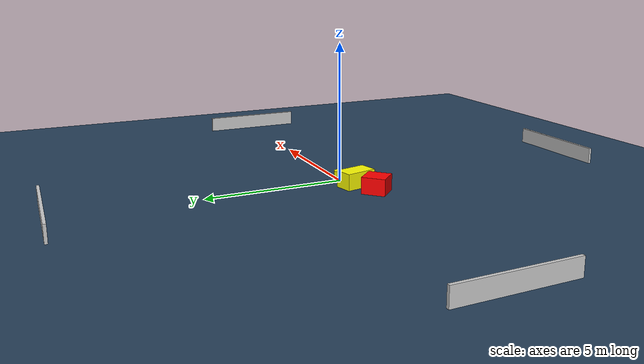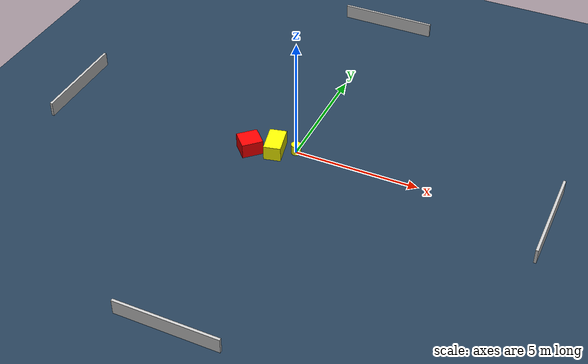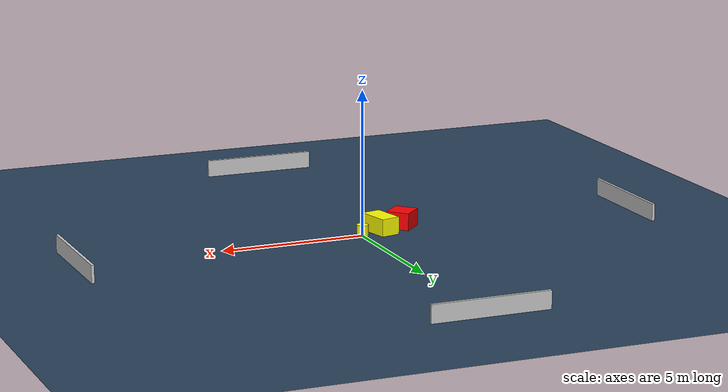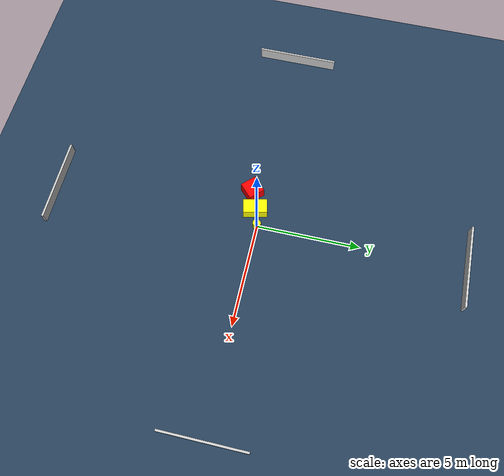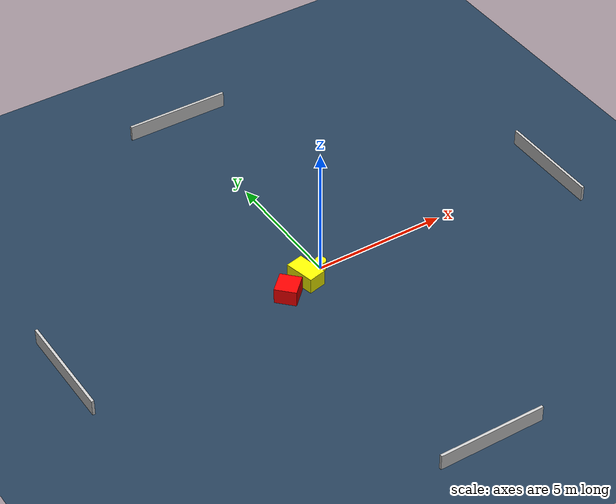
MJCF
<?xml version="1.0" ?>
<mujoco model="generated_environment">
  <option timestep="0.01" integrator="RK4" cone="elliptic"/>
  <default>
    <geom density="1"/>
  </default>
  <asset>
    <texture builtin="gradient" height="3072" name="skybox" rgb1="0.3 0.5 0.7" rgb2="0 0 0" type="skybox" width="512"/>
    <texture builtin="checker" height="300" name="groundplane" rgb1="0.2 0.3 0.4" rgb2="0.1 0.2 0.3" type="2d" width="300"/>
    <material name="groundplane" reflectance="0.2" texrepeat="5 5" texture="groundplane"/>
  </asset>
  <worldbody>
    <light dir="0 0 -1" directional="true" pos="0 0 1.5"/>
    <geom condim="3" friction="0.5 0.005 0.001" material="groundplane" name="floor" pos="0 0 0" size="0 0 0.05" type="plane"/>
    <body name="walls">
      <geom name="wall_1" condim="4" pos="-10.0 0.0 0.3" rgba="0.800000011920929 0.800000011920929 0.800000011920929 1.0" size="0.05 2.0 0.3" type="box"/>
      <geom name="wall_2" condim="4" pos="10.0 0.0 0.3" rgba="0.800000011920929 0.800000011920929 0.800000011920929 1.0" size="0.05 2.0 0.3" type="box"/>
      <geom name="wall_3" condim="4" pos="0.0 -10.0 0.3" rgba="0.800000011920929 0.800000011920929 0.800000011920929 1.0" size="2.0 0.05 0.3" type="box"/>
      <geom name="wall_4" condim="4" pos="0.0 10.0 0.3" rgba="0.800000011920929 0.800000011920929 0.800000011920929 1.0" size="2.0 0.05 0.3" type="box"/>
    </body>
    <body name="robot">
      <joint name="joint_x" type="slide" pos="0 0 0" axis="1 0 0"/>
      <joint name="joint_y" type="slide" pos="0 0 0" axis="0 1 0"/>
      <geom name="robot" type="cylinder" pos="0.0 0.0 0.2" size="0.2 0.2 0.0" mass="5.0" friction="1.0 0.005 0.0001" condim="4" rgba="1.0 1.0 0.0 1.0"/>
    </body>
    <body name="obstacle_1_movable">
      <geom name="obstacle_1_movable" condim="4" pos="-0.7771820897574637 -0.26125439187140403 0.3" euler="0 0 282.5923002411082" friction="0.0 0.005 0.001" rgba="1.0 1.0 0.0 1.0" size="0.5754132655627688 0.3388794889555787 0.3" type="box" mass="0.1"/>
      <joint type="free"/>
    </body>
    <body name="obstacle_2_static">
      <geom name="obstacle_2_static" condim="4" pos="-1.713582730160264 -0.601926229108239 0.3" euler="0 0 134.10737904595433" friction="0.0 0.005 0.001" rgba="1.0 0.0 0.0 1.0" size="0.4019764327114824 0.42296442026881004 0.3" type="box"/>
    </body>
  </worldbody>
  <actuator>
    <motor name="actuator_x" joint="joint_x" gear="1" ctrlrange="-1 1"/>
    <motor name="actuator_y" joint="joint_y" gear="1" ctrlrange="-1 1"/>
  </actuator>
</mujoco>
